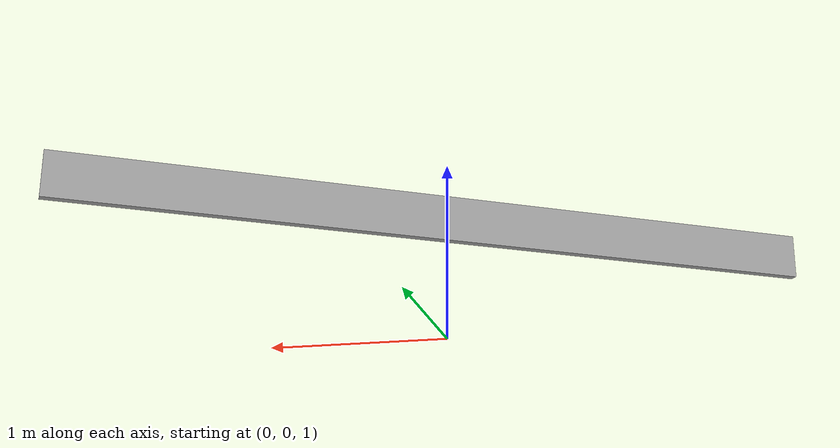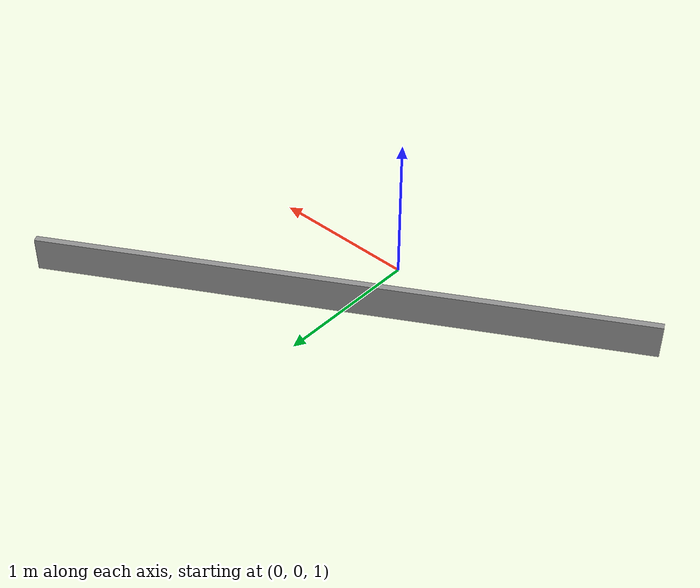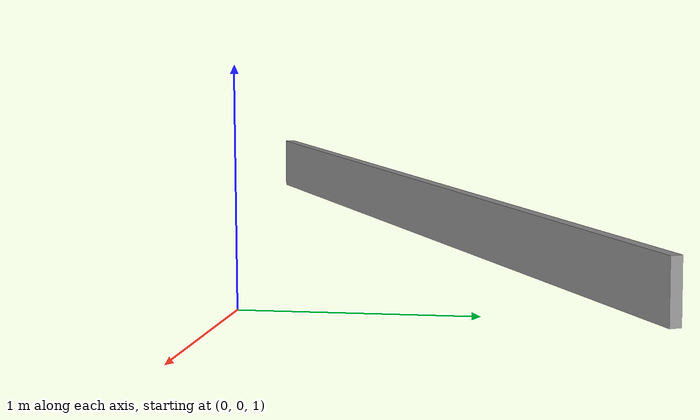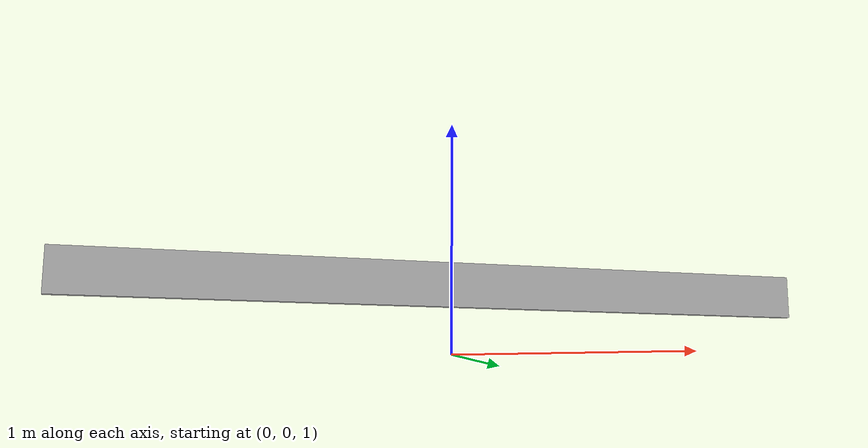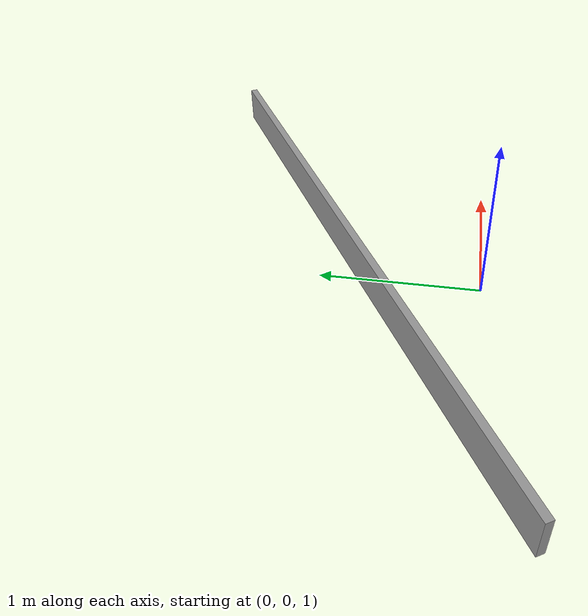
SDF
<?xml version='1.0'?>
<sdf version='1.6'>
  <model name='grey_wall_t_25_r'>
    <link name='link'>
      <pose frame=''>-0.184314 0.780867 1.4 0 -0 0.533829</pose>
      <inertial>
        <inertia>
          <ixx>nan</ixx>
          <ixy>0</ixy>
          <ixz>0</ixz>
          <iyy>nan</iyy>
          <iyz>0</iyz>
          <izz>nan</izz>
        </inertia>
        <mass>0</mass>
        <pose frame=''>0 0 0 0 -0 0</pose>
      </inertial>
      <self_collide>0</self_collide>
      <kinematic>0</kinematic>
      <gravity>1</gravity>
      <visual name='visual'>
        <cast_shadows>0</cast_shadows>
        <geometry>
          <box>
            <size>3.87835 0.043266 0.226147</size>
          </box>
        </geometry>
        <material>
          <script>
            <uri>model://grey_wall/materials/scripts</uri>
            <uri>model://grey_wall/materials/textures</uri>
            <name>vrc/grey_wall</name>
          </script>
          <ambient>1 1 1 1</ambient>
          <diffuse>1 1 1 1</diffuse>
          <specular>0 0 0 1</specular>
          <emissive>0 0 0 1</emissive>
          <shader type='vertex'>
            <normal_map>__default__</normal_map>
          </shader>
        </material>
        <pose frame=''>0 0 0 0 -0 0</pose>
        <transparency>0</transparency>
      </visual>
      <collision name='collision'>
        <laser_retro>0</laser_retro>
        <max_contacts>10</max_contacts>
        <pose frame=''>0 0 0 0 -0 0</pose>
        <geometry>
          <box>
            <size>3.87835 0.043266 0.226147</size>
          </box>
        </geometry>
        <surface>
          <friction>
            <ode>
              <mu>1</mu>
              <mu2>1</mu2>
              <fdir1>0 0 0</fdir1>
              <slip1>0</slip1>
              <slip2>0</slip2>
            </ode>
            <torsional>
              <coefficient>1</coefficient>
              <patch_radius>0</patch_radius>
              <surface_radius>0</surface_radius>
              <use_patch_radius>1</use_patch_radius>
              <ode>
                <slip>0</slip>
              </ode>
            </torsional>
          </friction>
          <bounce>
            <restitution_coefficient>0</restitution_coefficient>
            <threshold>1e+06</threshold>
          </bounce>
          <contact>
            <collide_without_contact>0</collide_without_contact>
            <collide_without_contact_bitmask>1</collide_without_contact_bitmask>
            <collide_bitmask>1</collide_bitmask>
            <ode>
              <soft_cfm>0</soft_cfm>
              <soft_erp>0.2</soft_erp>
              <kp>1e+13</kp>
              <kd>1</kd>
              <max_vel>0.01</max_vel>
              <min_depth>0</min_depth>
            </ode>
            <bullet>
              <split_impulse>1</split_impulse>
              <split_impulse_penetration_threshold>-0.01</split_impulse_penetration_threshold>
              <soft_cfm>0</soft_cfm>
              <soft_erp>0.2</soft_erp>
              <kp>1e+13</kp>
              <kd>1</kd>
            </bullet>
          </contact>
        </surface>
      </collision>
    </link>
    <static>1</static>
    <allow_auto_disable>1</allow_auto_disable>
  </model>
</sdf>
